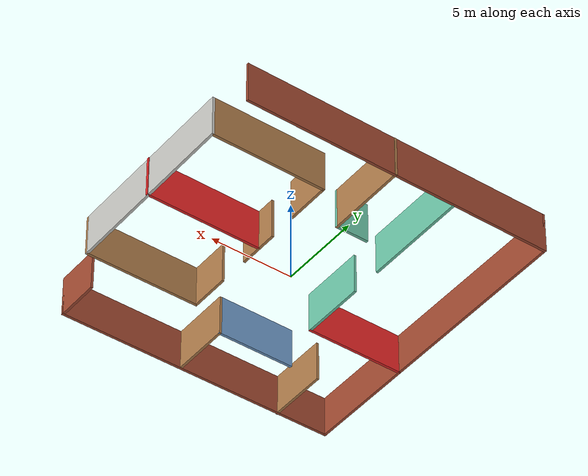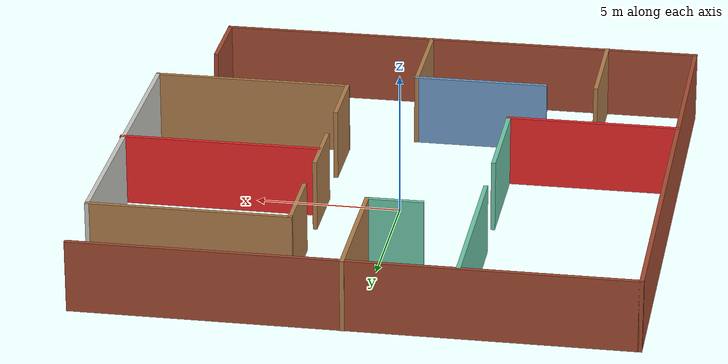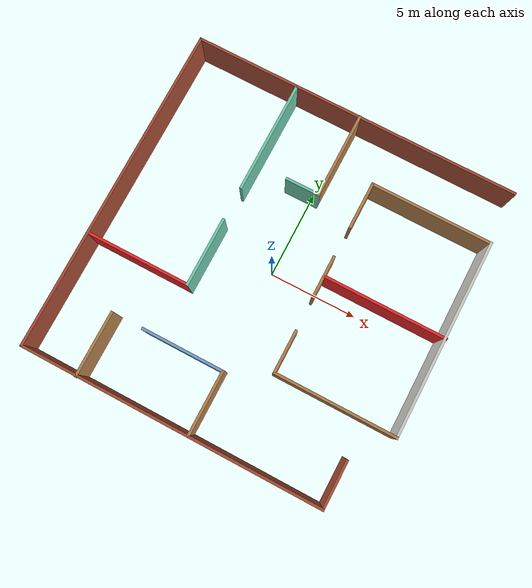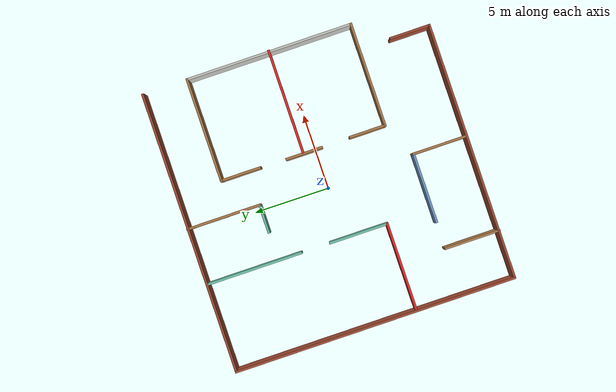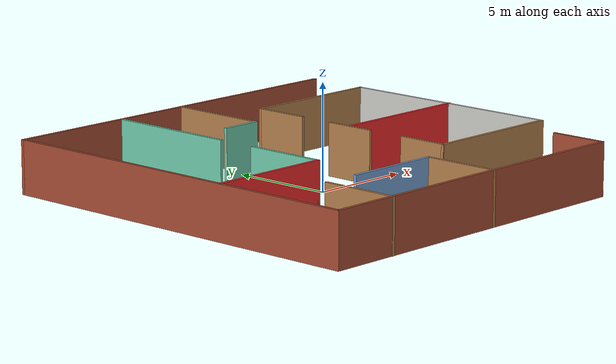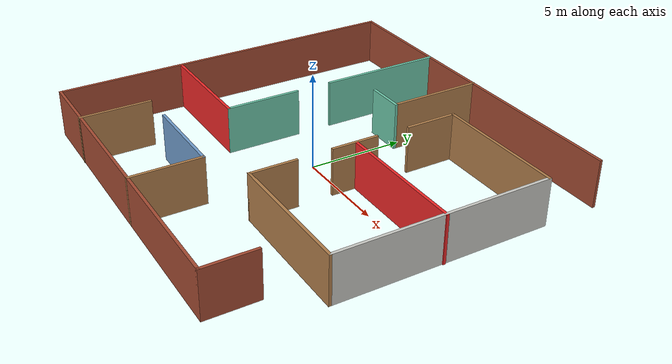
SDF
<?xml version='1.0'?>
<sdf version='1.6'>
  <model name='building_submit2'>
    <pose frame=''>0.125147 -0.069971 0 0 -0 0</pose>
    <link name='Wall_13'>
      <collision name='Wall_13_Collision'>
        <geometry>
          <box>
            <size>19 0.15 2.5</size>
          </box>
        </geometry>
        <pose frame=''>0 0 1.25 0 -0 0</pose>
      </collision>
      <visual name='Wall_13_Visual'>
        <pose frame=''>0 0 1.25 0 -0 0</pose>
        <geometry>
          <box>
            <size>19 0.15 2.5</size>
          </box>
        </geometry>
        <material>
          <script>
            <uri>file://media/materials/scripts/gazebo.material</uri>
            <name>Gazebo/Bricks</name>
          </script>
          <ambient>1 1 1 1</ambient>
        </material>
        <meta>
          <layer>0</layer>
        </meta>
      </visual>
      <pose frame=''>-9.41583 0.005472 0 0 -0 -1.5708</pose>
    </link>
    <link name='Wall_15'>
      <collision name='Wall_15_Collision'>
        <geometry>
          <box>
            <size>18.9075 0.15 2.5</size>
          </box>
        </geometry>
        <pose frame=''>0 0 1.25 0 -0 0</pose>
      </collision>
      <visual name='Wall_15_Visual'>
        <pose frame=''>0 0 1.25 0 -0 0</pose>
        <geometry>
          <box>
            <size>18.9075 0.15 2.5</size>
          </box>
        </geometry>
        <material>
          <script>
            <uri>file://media/materials/scripts/gazebo.material</uri>
            <name>Gazebo/Bricks</name>
          </script>
          <ambient>1 1 1 1</ambient>
        </material>
        <meta>
          <layer>0</layer>
        </meta>
      </visual>
      <pose frame=''>-0.037088 9.43047 0 0 -0 0</pose>
    </link>
    <link name='Wall_21'>
      <collision name='Wall_21_Collision'>
        <geometry>
          <box>
            <size>7 0.15 2.5</size>
          </box>
        </geometry>
        <pose frame=''>0 0 1.25 0 -0 0</pose>
      </collision>
      <visual name='Wall_21_Visual'>
        <pose frame=''>0 0 1.25 0 -0 0</pose>
        <geometry>
          <box>
            <size>7 0.15 2.5</size>
          </box>
        </geometry>
        <material>
          <script>
            <uri>file://media/materials/scripts/gazebo.material</uri>
            <name>Gazebo/Wood</name>
          </script>
          <ambient>1 1 1 1</ambient>
        </material>
        <meta>
          <layer>0</layer>
        </meta>
      </visual>
      <pose frame=''>5.94123 6.42349 0 0 -0 3.14159</pose>
    </link>
    <link name='Wall_23'>
      <collision name='Wall_23_Collision'>
        <geometry>
          <box>
            <size>7 0.15 2.5</size>
          </box>
        </geometry>
        <pose frame=''>0 0 1.25 0 -0 0</pose>
      </collision>
      <visual name='Wall_23_Visual'>
        <pose frame=''>0 0 1.25 0 -0 0</pose>
        <geometry>
          <box>
            <size>7 0.15 2.5</size>
          </box>
        </geometry>
        <material>
          <script>
            <uri>file://media/materials/scripts/gazebo.material</uri>
            <name>Gazebo/Wood</name>
          </script>
          <ambient>1 1 1 1</ambient>
        </material>
        <meta>
          <layer>0</layer>
        </meta>
      </visual>
      <pose frame=''>5.94123 -4.67651 0 0 -0 0</pose>
    </link>
    <link name='Wall_25'>
      <collision name='Wall_25_Collision'>
        <geometry>
          <box>
            <size>7 0.15 2.5</size>
          </box>
        </geometry>
        <pose frame=''>0 0 1.25 0 -0 0</pose>
      </collision>
      <visual name='Wall_25_Visual'>
        <pose frame=''>0 0 1.25 0 -0 0</pose>
        <geometry>
          <box>
            <size>7 0.15 2.5</size>
          </box>
        </geometry>
        <material>
          <script>
            <uri>file://media/materials/scripts/gazebo.material</uri>
            <name>Gazebo/Grey</name>
          </script>
          <ambient>0.937255 0.160784 0.160784 1</ambient>
        </material>
        <meta>
          <layer>0</layer>
        </meta>
      </visual>
      <pose frame=''>5.99083 0.872147 0 0 -0 0</pose>
    </link>
    <link name='Wall_27'>
      <collision name='Wall_27_Collision'>
        <geometry>
          <box>
            <size>11.25 0.15 2.5</size>
          </box>
        </geometry>
        <pose frame=''>0 0 1.25 0 -0 0</pose>
      </collision>
      <visual name='Wall_27_Visual'>
        <pose frame=''>0 0 1.25 0 -0 0</pose>
        <geometry>
          <box>
            <size>11.25 0.15 2.5</size>
          </box>
        </geometry>
        <material>
          <script>
            <uri>file://media/materials/scripts/gazebo.material</uri>
            <name>Gazebo/CeilingTiled</name>
          </script>
          <ambient>1 1 1 1</ambient>
        </material>
        <meta>
          <layer>0</layer>
        </meta>
      </visual>
      <pose frame=''>9.36623 0.873493 0 0 -0 -1.5708</pose>
    </link>
    <link name='Wall_36'>
      <collision name='Wall_36_Collision'>
        <geometry>
          <box>
            <size>17.25 0.15 2.5</size>
          </box>
        </geometry>
        <pose frame=''>0 0 1.25 0 -0 0</pose>
      </collision>
      <visual name='Wall_36_Visual'>
        <pose frame=''>0 0 1.25 0 -0 0</pose>
        <geometry>
          <box>
            <size>17.25 0.15 2.5</size>
          </box>
        </geometry>
        <material>
          <script>
            <uri>file://media/materials/scripts/gazebo.material</uri>
            <name>Gazebo/Bricks</name>
          </script>
          <ambient>1 1 1 1</ambient>
        </material>
        <meta>
          <layer>0</layer>
        </meta>
      </visual>
      <pose frame=''>-0.865827 -9.41953 0 0 -0 0</pose>
    </link>
    <link name='Wall_37'>
      <collision name='Wall_37_Collision'>
        <geometry>
          <box>
            <size>2.75 0.15 2.5</size>
          </box>
        </geometry>
        <pose frame=''>0 0 1.25 0 -0 0</pose>
      </collision>
      <visual name='Wall_37_Visual'>
        <pose frame=''>0 0 1.25 0 -0 0</pose>
        <geometry>
          <box>
            <size>2.75 0.15 2.5</size>
          </box>
        </geometry>
        <material>
          <script>
            <uri>file://media/materials/scripts/gazebo.material</uri>
            <name>Gazebo/Bricks</name>
          </script>
          <ambient>1 1 1 1</ambient>
        </material>
        <meta>
          <layer>0</layer>
        </meta>
      </visual>
      <pose frame=''>7.68417 -8.11953 0 0 -0 1.5708</pose>
    </link>
    <link name='Wall_39'>
      <collision name='Wall_39_Collision'>
        <geometry>
          <box>
            <size>2.75 0.15 2.5</size>
          </box>
        </geometry>
        <pose frame=''>0 0 1.25 0 -0 0</pose>
      </collision>
      <visual name='Wall_39_Visual'>
        <pose frame=''>0 0 1.25 0 -0 0</pose>
        <geometry>
          <box>
            <size>2.75 0.15 2.5</size>
          </box>
        </geometry>
        <material>
          <script>
            <uri>file://media/materials/scripts/gazebo.material</uri>
            <name>Gazebo/Wood</name>
          </script>
          <ambient>1 1 1 1</ambient>
        </material>
        <meta>
          <layer>0</layer>
        </meta>
      </visual>
      <pose frame=''>2.51623 5.12349 0 0 -0 -1.5708</pose>
    </link>
    <link name='Wall_41'>
      <collision name='Wall_41_Collision'>
        <geometry>
          <box>
            <size>2.5 0.15 2.5</size>
          </box>
        </geometry>
        <pose frame=''>0 0 1.25 0 -0 0</pose>
      </collision>
      <visual name='Wall_41_Visual'>
        <pose frame=''>0 0 1.25 0 -0 0</pose>
        <geometry>
          <box>
            <size>2.5 0.15 2.5</size>
          </box>
        </geometry>
        <material>
          <script>
            <uri>file://media/materials/scripts/gazebo.material</uri>
            <name>Gazebo/Wood</name>
          </script>
          <ambient>1 1 1 1</ambient>
        </material>
        <meta>
          <layer>0</layer>
        </meta>
      </visual>
      <pose frame=''>2.4831 0.814696 0 0 -0 -1.5708</pose>
    </link>
    <link name='Wall_43'>
      <collision name='Wall_43_Collision'>
        <geometry>
          <box>
            <size>2.5 0.15 2.5</size>
          </box>
        </geometry>
        <pose frame=''>0 0 1.25 0 -0 0</pose>
      </collision>
      <visual name='Wall_43_Visual'>
        <pose frame=''>0 0 1.25 0 -0 0</pose>
        <geometry>
          <box>
            <size>2.5 0.15 2.5</size>
          </box>
        </geometry>
        <material>
          <script>
            <uri>file://media/materials/scripts/gazebo.material</uri>
            <name>Gazebo/Wood</name>
          </script>
          <ambient>1 1 1 1</ambient>
        </material>
        <meta>
          <layer>0</layer>
        </meta>
      </visual>
      <pose frame=''>2.51623 -3.50151 0 0 -0 1.5708</pose>
    </link>
    <link name='Wall_46'>
      <collision name='Wall_46_Collision'>
        <geometry>
          <box>
            <size>6 0.15 2.5</size>
          </box>
        </geometry>
        <pose frame=''>0 0 1.25 0 -0 0</pose>
      </collision>
      <visual name='Wall_46_Visual'>
        <pose frame=''>0 0 1.25 0 -0 0</pose>
        <geometry>
          <box>
            <size>6 0.15 2.5</size>
          </box>
        </geometry>
        <material>
          <script>
            <uri>file://media/materials/scripts/gazebo.material</uri>
            <name>Gazebo/Grey</name>
          </script>
          <ambient>0.937255 0.160784 0.160784 1</ambient>
        </material>
        <meta>
          <layer>0</layer>
        </meta>
      </visual>
      <pose frame=''>-6.43819 -2.78383 0 0 -0 3.14159</pose>
    </link>
    <link name='Wall_48'>
      <collision name='Wall_48_Collision'>
        <geometry>
          <box>
            <size>3.75 0.15 2.5</size>
          </box>
        </geometry>
        <pose frame=''>0 0 1.25 0 -0 0</pose>
      </collision>
      <visual name='Wall_48_Visual'>
        <pose frame=''>0 0 1.25 0 -0 0</pose>
        <geometry>
          <box>
            <size>3.75 0.15 2.5</size>
          </box>
        </geometry>
        <material>
          <script>
            <uri>file://media/materials/scripts/gazebo.material</uri>
            <name>Gazebo/Wood</name>
          </script>
          <ambient>1 1 1 1</ambient>
        </material>
        <meta>
          <layer>0</layer>
        </meta>
      </visual>
      <pose frame=''>-6.2174 -7.64721 0 0 -0 1.5708</pose>
    </link>
    <link name='Wall_50'>
      <collision name='Wall_50_Collision'>
        <geometry>
          <box>
            <size>3.75 0.15 2.5</size>
          </box>
        </geometry>
        <pose frame=''>0 0 1.25 0 -0 0</pose>
      </collision>
      <visual name='Wall_50_Visual'>
        <pose frame=''>0 0 1.25 0 -0 0</pose>
        <geometry>
          <box>
            <size>3.75 0.15 2.5</size>
          </box>
        </geometry>
        <material>
          <script>
            <uri>file://media/materials/scripts/gazebo.material</uri>
            <name>Gazebo/Wood</name>
          </script>
          <ambient>1 1 1 1</ambient>
        </material>
        <meta>
          <layer>0</layer>
        </meta>
      </visual>
      <pose frame=''>0.195698 -7.62076 0 0 -0 -1.5708</pose>
    </link>
    <link name='Wall_52'>
      <collision name='Wall_52_Collision'>
        <geometry>
          <box>
            <size>4.75 0.15 2.5</size>
          </box>
        </geometry>
        <pose frame=''>0 0 1.25 0 -0 0</pose>
      </collision>
      <visual name='Wall_52_Visual'>
        <pose frame=''>0 0 1.25 0 -0 0</pose>
        <geometry>
          <box>
            <size>4.75 0.15 2.5</size>
          </box>
        </geometry>
        <material>
          <script>
            <uri>file://media/materials/scripts/gazebo.material</uri>
            <name>Gazebo/Grey</name>
          </script>
          <ambient>0.447059 0.623529 0.811765 1</ambient>
        </material>
        <meta>
          <layer>0</layer>
        </meta>
      </visual>
      <pose frame=''>-2.1043 -5.82076 0 0 -0 3.14159</pose>
    </link>
    <link name='Wall_55'>
      <collision name='Wall_55_Collision'>
        <geometry>
          <box>
            <size>5 0.15 2.5</size>
          </box>
        </geometry>
        <pose frame=''>0 0 1.25 0 -0 0</pose>
      </collision>
      <visual name='Wall_55_Visual'>
        <pose frame=''>0 0 1.25 0 -0 0</pose>
        <geometry>
          <box>
            <size>5 0.15 2.5</size>
          </box>
        </geometry>
        <material>
          <script>
            <uri>file://media/materials/scripts/gazebo.material</uri>
            <name>Gazebo/Wood</name>
          </script>
          <ambient>1 1 1 1</ambient>
        </material>
        <meta>
          <layer>0</layer>
        </meta>
      </visual>
      <pose frame=''>0.261068 7.02221 0 0 -0 -1.5708</pose>
    </link>
    <link name='Wall_56'>
      <collision name='Wall_56_Collision'>
        <geometry>
          <box>
            <size>2 0.15 2.5</size>
          </box>
        </geometry>
        <pose frame=''>0 0 1.25 0 -0 0</pose>
      </collision>
      <visual name='Wall_56_Visual'>
        <pose frame=''>0 0 1.25 0 -0 0</pose>
        <geometry>
          <box>
            <size>2 0.15 2.5</size>
          </box>
        </geometry>
        <material>
          <script>
            <uri>file://media/materials/scripts/gazebo.material</uri>
            <name>Gazebo/Grey</name>
          </script>
          <ambient>0.435294 0.796078 0.67451 1</ambient>
        </material>
        <meta>
          <layer>0</layer>
        </meta>
      </visual>
      <pose frame=''>-0.663932 4.59721 0 0 -0 3.14159</pose>
    </link>
    <link name='Wall_58'>
      <collision name='Wall_58_Collision'>
        <geometry>
          <box>
            <size>6.5 0.15 2.5</size>
          </box>
        </geometry>
        <pose frame=''>0 0 1.25 0 -0 0</pose>
      </collision>
      <visual name='Wall_58_Visual'>
        <pose frame=''>0 0 1.25 0 -0 0</pose>
        <geometry>
          <box>
            <size>6.5 0.15 2.5</size>
          </box>
        </geometry>
        <material>
          <script>
            <uri>file://media/materials/scripts/gazebo.material</uri>
            <name>Gazebo/Grey</name>
          </script>
          <ambient>0.435294 0.796078 0.67451 1</ambient>
        </material>
        <meta>
          <layer>0</layer>
        </meta>
      </visual>
      <pose frame=''>-3.51319 6.23718 0 0 -0 -1.5708</pose>
    </link>
    <link name='Wall_60'>
      <collision name='Wall_60_Collision'>
        <geometry>
          <box>
            <size>4 0.15 2.5</size>
          </box>
        </geometry>
        <pose frame=''>0 0 1.25 0 -0 0</pose>
      </collision>
      <visual name='Wall_60_Visual'>
        <pose frame=''>0 0 1.25 0 -0 0</pose>
        <geometry>
          <box>
            <size>4 0.15 2.5</size>
          </box>
        </geometry>
        <material>
          <script>
            <uri>file://media/materials/scripts/gazebo.material</uri>
            <name>Gazebo/Grey</name>
          </script>
          <ambient>0.435294 0.796078 0.67451 1</ambient>
        </material>
        <meta>
          <layer>0</layer>
        </meta>
      </visual>
      <pose frame=''>-3.51319 -0.858835 0 0 -0 1.5708</pose>
    </link>
    <static>1</static>
  </model>
</sdf>
